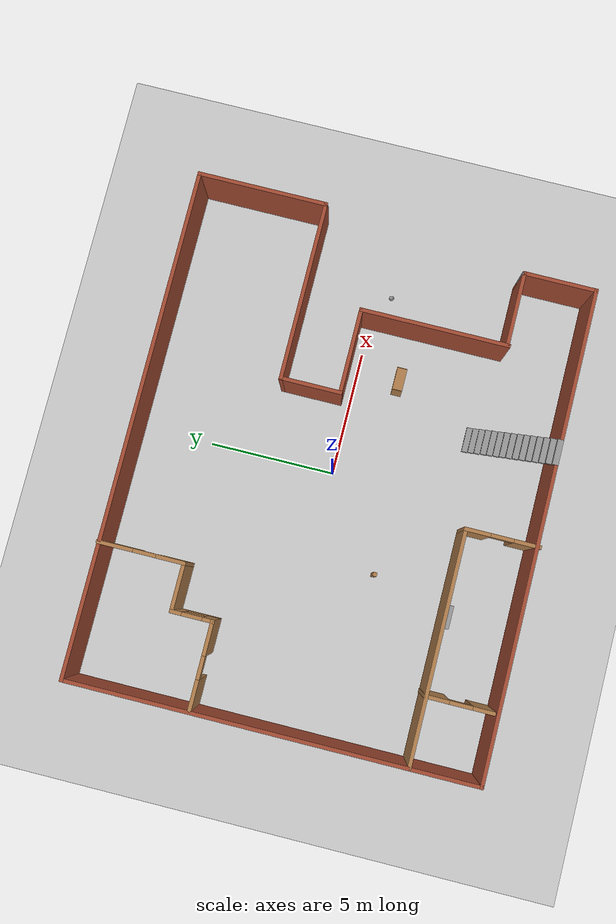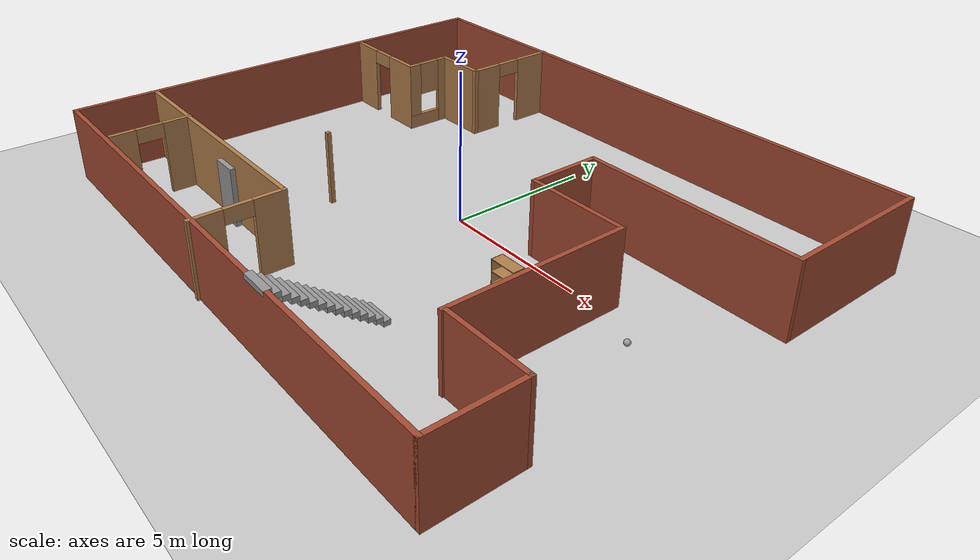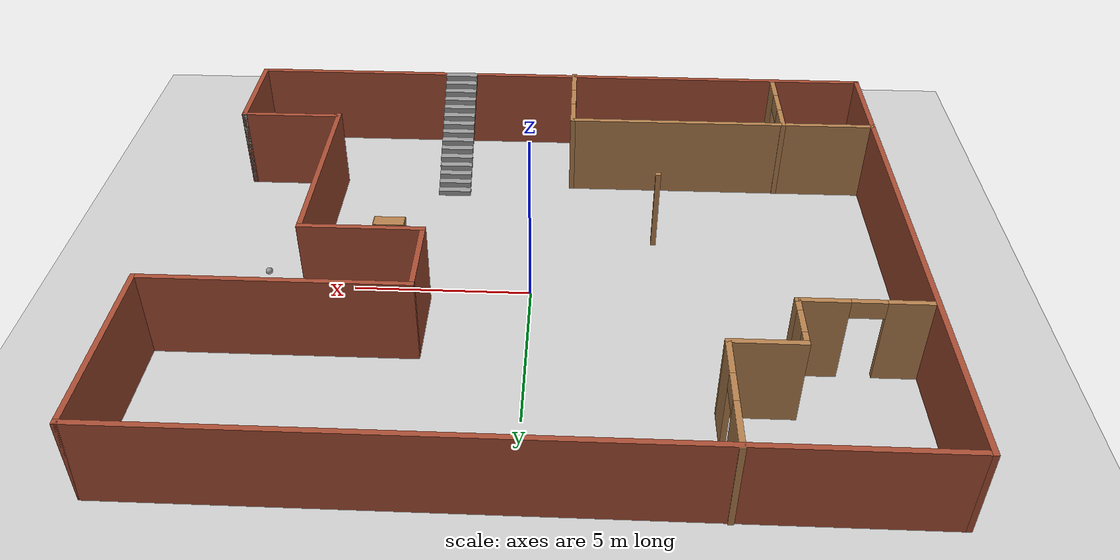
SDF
<sdf version="1.6">
 <world name="KoWorld">
  <model name="ground_plane">
   <static>1</static>
   <link name="link">
    <collision name="collision">
     <geometry><plane><normal>0 0 1</normal><size>100 100</size></plane></geometry>
     <surface>
      <contact><collide_bitmask>65535</collide_bitmask></contact>
      <friction><ode><mu>100</mu><mu2>50</mu2></ode></friction>
     </surface>
    </collision>
    <visual name="visual">
     <cast_shadows>0</cast_shadows>
     <geometry><plane><normal>0 0 1</normal><size>100 100</size></plane></geometry>
     <material>
      <script><uri>file://media/materials/scripts/gazebo.material</uri><name>Gazebo/Grey</name></script>
     </material>
    </visual>
   </link>
  </model>
  <model name="KoLabHouse">
   <pose>-0.11838 -0.20588 0 0 -0 0</pose>
   <link name="Door_3">
    <collision name="Door_3_Collision">
     <geometry><box><size>0.9 0.17 2</size></box></geometry>
     <pose>0 0 1 0 -0 0</pose>
    </collision>
    <visual name="Door_3_Visual">
     <pose>0 0 1 0 -0 0</pose>
     <geometry><box><size>0.9 0.17 2</size></box></geometry>
     <material>
      <script><uri>file://media/materials/scripts/gazebo.material</uri><name>Gazebo/Grey</name></script>
     </material>
    </visual>
    <pose>-4.31656 -5.45643 0 0 -0 0</pose>
   </link>
   <link name="Stairs_0">
    <visual name="Stairs_0_Visual_0">
     <pose>2.76269 -4.71817 0.083333 0 -0 0</pose>
     <geometry><box><size>1 0.233333 0.166667</size></box></geometry>
     <material>
      <script><uri>file://media/materials/scripts/gazebo.material</uri><name>Gazebo/Grey</name></script>
      <ambient>1 1 1 1</ambient>
     </material>
     <meta><layer>0</layer></meta>
    </visual>
    <collision name="Stairs_0_Collision_0">
     <geometry><box><size>1 0.233333 0.166667</size></box></geometry>
     <pose>2.76269 -4.71817 0.083333 0 -0 0</pose>
    </collision>
    <visual name="Stairs_0_Visual_1">
     <pose>2.76269 -4.95151 0.25 0 -0 0</pose>
     <geometry><box><size>1 0.233333 0.166667</size></box></geometry>
     <material>
      <script><uri>file://media/materials/scripts/gazebo.material</uri><name>Gazebo/Grey</name></script>
      <ambient>1 1 1 1</ambient>
     </material>
     <meta><layer>0</layer></meta>
    </visual>
    <collision name="Stairs_0_Collision_1">
     <geometry><box><size>1 0.233333 0.166667</size></box></geometry>
     <pose>2.76269 -4.95151 0.25 0 -0 0</pose>
    </collision>
    <visual name="Stairs_0_Visual_2">
     <pose>2.76269 -5.18484 0.416667 0 -0 0</pose>
     <geometry><box><size>1 0.233333 0.166667</size></box></geometry>
     <material>
      <script><uri>file://media/materials/scripts/gazebo.material</uri><name>Gazebo/Grey</name></script>
      <ambient>1 1 1 1</ambient>
     </material>
     <meta><layer>0</layer></meta>
    </visual>
    <collision name="Stairs_0_Collision_2">
     <geometry><box><size>1 0.233333 0.166667</size></box></geometry>
     <pose>2.76269 -5.18484 0.416667 0 -0 0</pose>
    </collision>
    <visual name="Stairs_0_Visual_3">
     <pose>2.76269 -5.41817 0.583333 0 -0 0</pose>
     <geometry><box><size>1 0.233333 0.166667</size></box></geometry>
     <material>
      <script><uri>file://media/materials/scripts/gazebo.material</uri><name>Gazebo/Grey</name></script>
      <ambient>1 1 1 1</ambient>
     </material>
     <meta><layer>0</layer></meta>
    </visual>
    <collision name="Stairs_0_Collision_3">
     <geometry><box><size>1 0.233333 0.166667</size></box></geometry>
     <pose>2.76269 -5.41817 0.583333 0 -0 0</pose>
    </collision>
    <visual name="Stairs_0_Visual_4">
     <pose>2.76269 -5.65151 0.75 0 -0 0</pose>
     <geometry><box><size>1 0.233333 0.166667</size></box></geometry>
     <material>
      <script><uri>file://media/materials/scripts/gazebo.material</uri><name>Gazebo/Grey</name></script>
      <ambient>1 1 1 1</ambient>
     </material>
     <meta><layer>0</layer></meta>
    </visual>
    <collision name="Stairs_0_Collision_4">
     <geometry><box><size>1 0.233333 0.166667</size></box></geometry>
     <pose>2.76269 -5.65151 0.75 0 -0 0</pose>
    </collision>
    <visual name="Stairs_0_Visual_5">
     <pose>2.76269 -5.88484 0.916667 0 -0 0</pose>
     <geometry><box><size>1 0.233333 0.166667</size></box></geometry>
     <material>
      <script><uri>file://media/materials/scripts/gazebo.material</uri><name>Gazebo/Grey</name></script>
      <ambient>1 1 1 1</ambient>
     </material>
     <meta><layer>0</layer></meta>
    </visual>
    <collision name="Stairs_0_Collision_5">
     <geometry><box><size>1 0.233333 0.166667</size></box></geometry>
     <pose>2.76269 -5.88484 0.916667 0 -0 0</pose>
    </collision>
    <visual name="Stairs_0_Visual_6">
     <pose>2.76269 -6.11817 1.08333 0 -0 0</pose>
     <geometry><box><size>1 0.233333 0.166667</size></box></geometry>
     <material>
      <script><uri>file://media/materials/scripts/gazebo.material</uri><name>Gazebo/Grey</name></script>
      <ambient>1 1 1 1</ambient>
     </material>
     <meta><layer>0</layer></meta>
    </visual>
    <collision name="Stairs_0_Collision_6">
     <geometry><box><size>1 0.233333 0.166667</size></box></geometry>
     <pose>2.76269 -6.11817 1.08333 0 -0 0</pose>
    </collision>
    <visual name="Stairs_0_Visual_7">
     <pose>2.76269 -6.35151 1.25 0 -0 0</pose>
     <geometry><box><size>1 0.233333 0.166667</size></box></geometry>
     <material>
      <script><uri>file://media/materials/scripts/gazebo.material</uri><name>Gazebo/Grey</name></script>
      <ambient>1 1 1 1</ambient>
     </material>
     <meta><layer>0</layer></meta>
    </visual>
    <collision name="Stairs_0_Collision_7">
     <geometry><box><size>1 0.233333 0.166667</size></box></geometry>
     <pose>2.76269 -6.35151 1.25 0 -0 0</pose>
    </collision>
    <visual name="Stairs_0_Visual_8">
     <pose>2.76269 -6.58484 1.41667 0 -0 0</pose>
     <geometry><box><size>1 0.233333 0.166667</size></box></geometry>
     <material>
      <script><uri>file://media/materials/scripts/gazebo.material</uri><name>Gazebo/Grey</name></script>
      <ambient>1 1 1 1</ambient>
     </material>
     <meta><layer>0</layer></meta>
    </visual>
    <collision name="Stairs_0_Collision_8">
     <geometry><box><size>1 0.233333 0.166667</size></box></geometry>
     <pose>2.76269 -6.58484 1.41667 0 -0 0</pose>
    </collision>
    <visual name="Stairs_0_Visual_9">
     <pose>2.76269 -6.81817 1.58333 0 -0 0</pose>
     <geometry><box><size>1 0.233333 0.166667</size></box></geometry>
     <material>
      <script><uri>file://media/materials/scripts/gazebo.material</uri><name>Gazebo/Grey</name></script>
      <ambient>1 1 1 1</ambient>
     </material>
     <meta><layer>0</layer></meta>
    </visual>
    <collision name="Stairs_0_Collision_9">
     <geometry><box><size>1 0.233333 0.166667</size></box></geometry>
     <pose>2.76269 -6.81817 1.58333 0 -0 0</pose>
    </collision>
    <visual name="Stairs_0_Visual_10">
     <pose>2.76269 -7.05151 1.75 0 -0 0</pose>
     <geometry><box><size>1 0.233333 0.166667</size></box></geometry>
     <material>
      <script><uri>file://media/materials/scripts/gazebo.material</uri><name>Gazebo/Grey</name></script>
      <ambient>1 1 1 1</ambient>
     </material>
     <meta><layer>0</layer></meta>
    </visual>
    <collision name="Stairs_0_Collision_10">
     <geometry><box><size>1 0.233333 0.166667</size></box></geometry>
     <pose>2.76269 -7.05151 1.75 0 -0 0</pose>
    </collision>
    <visual name="Stairs_0_Visual_11">
     <pose>2.76269 -7.28484 1.91667 0 -0 0</pose>
     <geometry><box><size>1 0.233333 0.166667</size></box></geometry>
     <material>
      <script><uri>file://media/materials/scripts/gazebo.material</uri><name>Gazebo/Grey</name></script>
      <ambient>1 1 1 1</ambient>
     </material>
     <meta><layer>0</layer></meta>
    </visual>
    <collision name="Stairs_0_Collision_11">
     <geometry><box><size>1 0.233333 0.166667</size></box></geometry>
     <pose>2.76269 -7.28484 1.91667 0 -0 0</pose>
    </collision>
    <visual name="Stairs_0_Visual_12">
     <pose>2.76269 -7.51817 2.08333 0 -0 0</pose>
     <geometry><box><size>1 0.233333 0.166667</size></box></geometry>
     <material>
      <script><uri>file://media/materials/scripts/gazebo.material</uri><name>Gazebo/Grey</name></script>
      <ambient>1 1 1 1</ambient>
     </material>
     <meta><layer>0</layer></meta>
    </visual>
    <collision name="Stairs_0_Collision_12">
     <geometry><box><size>1 0.233333 0.166667</size></box></geometry>
     <pose>2.76269 -7.51817 2.08333 0 -0 0</pose>
    </collision>
    <visual name="Stairs_0_Visual_13">
     <pose>2.76269 -7.75151 2.25 0 -0 0</pose>
     <geometry><box><size>1 0.233333 0.166667</size></box></geometry>
     <material>
      <script><uri>file://media/materials/scripts/gazebo.material</uri><name>Gazebo/Grey</name></script>
      <ambient>1 1 1 1</ambient>
     </material>
     <meta><layer>0</layer></meta>
    </visual>
    <collision name="Stairs_0_Collision_13">
     <geometry><box><size>1 0.233333 0.166667</size></box></geometry>
     <pose>2.76269 -7.75151 2.25 0 -0 0</pose>
    </collision>
    <visual name="Stairs_0_Visual_14">
     <pose>2.76269 -7.98484 2.41667 0 -0 0</pose>
     <geometry><box><size>1 0.233333 0.166667</size></box></geometry>
     <material>
      <script><uri>file://media/materials/scripts/gazebo.material</uri><name>Gazebo/Grey</name></script>
      <ambient>1 1 1 1</ambient>
     </material>
     <meta><layer>0</layer></meta>
    </visual>
    <collision name="Stairs_0_Collision_14">
     <geometry><box><size>1 0.233333 0.166667</size></box></geometry>
     <pose>2.76269 -7.98484 2.41667 0 -0 0</pose>
    </collision>
   </link>
   <link name="Wall_10">
    <collision name="Wall_10_Collision">
     <geometry><box><size>3.5 0.15 2.5</size></box></geometry>
     <pose>0 0 1.25 0 -0 0</pose>
    </collision>
    <visual name="Wall_10_Visual">
     <pose>0 0 1.25 0 -0 0</pose>
     <geometry><box><size>3.5 0.15 2.5</size></box></geometry>
     <material>
      <script><uri>file://media/materials/scripts/gazebo.material</uri><name>Gazebo/Bricks</name></script>
      <ambient>1 1 1 1</ambient>
     </material>
     <meta><layer>0</layer></meta>
    </visual>
    <pose>4.65642 0.624103 0 0 -0 0</pose>
   </link>
   <link name="Wall_11">
    <collision name="Wall_11_Collision">
     <geometry><box><size>6 0.15 2.5</size></box></geometry>
     <pose>0 0 1.25 0 -0 0</pose>
    </collision>
    <visual name="Wall_11_Visual">
     <pose>0 0 1.25 0 -0 0</pose>
     <geometry><box><size>6 0.15 2.5</size></box></geometry>
     <material>
      <script><uri>file://media/materials/scripts/gazebo.material</uri><name>Gazebo/Bricks</name></script>
      <ambient>1 1 1 1</ambient>
     </material>
     <meta><layer>0</layer></meta>
    </visual>
    <pose>6.33142 -2.3009 0 0 -0 -1.5708</pose>
   </link>
   <link name="Wall_29">
    <collision name="Wall_29_Collision">
     <geometry><box><size>16.25 0.15 2.5</size></box></geometry>
     <pose>0 0 1.25 0 -0 0</pose>
    </collision>
    <visual name="Wall_29_Visual">
     <pose>0 0 1.25 0 -0 0</pose>
     <geometry><box><size>16.25 0.15 2.5</size></box></geometry>
     <material>
      <script><uri>file://media/materials/scripts/gazebo.material</uri><name>Gazebo/Bricks</name></script>
      <ambient>1 1 1 1</ambient>
     </material>
     <meta><layer>0</layer></meta>
    </visual>
    <pose>-10.0814 0.024103 0 0 -0 -1.5708</pose>
   </link>
   <link name="Wall_30">
    <collision name="Wall_30_Collision">
     <geometry><box><size>19.5 0.15 2.5</size></box></geometry>
     <pose>0 0 1.25 0 -0 0</pose>
    </collision>
    <visual name="Wall_30_Visual">
     <pose>0 0 1.25 0 -0 0</pose>
     <geometry><box><size>19.5 0.15 2.5</size></box></geometry>
     <material>
      <script><uri>file://media/materials/scripts/gazebo.material</uri><name>Gazebo/Bricks</name></script>
      <ambient>1 1 1 1</ambient>
     </material>
     <meta><layer>0</layer></meta>
    </visual>
    <pose>-0.406424 -8.0259 0 0 -0 0</pose>
   </link>
   <link name="Wall_31">
    <collision name="Wall_31_Collision">
     <geometry><box><size>3 0.15 2.5</size></box></geometry>
     <pose>0 0 1.25 0 -0 0</pose>
    </collision>
    <visual name="Wall_31_Visual">
     <pose>0 0 1.25 0 -0 0</pose>
     <geometry><box><size>3 0.15 2.5</size></box></geometry>
     <material>
      <script><uri>file://media/materials/scripts/gazebo.material</uri><name>Gazebo/Bricks</name></script>
      <ambient>1 1 1 1</ambient>
     </material>
     <meta><layer>0</layer></meta>
    </visual>
    <pose>9.26858 -6.6009 0 0 -0 1.5708</pose>
   </link>
   <link name="Wall_32">
    <collision name="Wall_32_Collision">
     <geometry><box><size>0.15 0.15 2.5</size></box></geometry>
     <pose>0 0 1.25 0 -0 0</pose>
    </collision>
    <visual name="Wall_32_Visual">
     <pose>0 0 1.25 0 -0 0</pose>
     <geometry><box><size>0.15 0.15 2.5</size></box></geometry>
     <material>
      <script><uri>file://media/materials/scripts/gazebo.material</uri><name>Gazebo/Grey</name></script>
      <ambient>1 1 1 1</ambient>
     </material>
     <meta><layer>0</layer></meta>
    </visual>
    <pose>9.26858 -5.1759 0 0 -0 0</pose>
   </link>
   <link name="Wall_37">
    <collision name="Wall_37_Collision">
     <geometry><box><size>0.15 0.15 2.5</size></box></geometry>
     <pose>0 0 1.25 0 -0 0</pose>
    </collision>
    <visual name="Wall_37_Visual">
     <pose>0 0 1.25 0 -0 0</pose>
     <geometry><box><size>0.15 0.15 2.5</size></box></geometry>
     <material>
      <script><uri>file://media/materials/scripts/gazebo.material</uri><name>Gazebo/Wood</name></script>
      <ambient>1 1 1 1</ambient>
     </material>
     <meta><layer>0</layer></meta>
    </visual>
    <pose>-3.43142 -2.3259 0 0 -0 0</pose>
   </link>
   <link name="Wall_44">
    <collision name="Wall_44_Collision">
     <geometry><box><size>3 0.15 2.5</size></box></geometry>
     <pose>0 0 1.25 0 -0 0</pose>
    </collision>
    <visual name="Wall_44_Visual">
     <pose>0 0 1.25 0 -0 0</pose>
     <geometry><box><size>3 0.15 2.5</size></box></geometry>
     <material>
      <script><uri>file://media/materials/scripts/gazebo.material</uri><name>Gazebo/Bricks</name></script>
      <ambient>1 1 1 1</ambient>
     </material>
     <meta><layer>0</layer></meta>
    </visual>
    <pose>7.84358 -5.1759 0 0 -0 3.14159</pose>
   </link>
   <link name="Wall_49">
    <pose>-4.77775 6.43485 0 0 -0 -1.5708</pose>
    <visual name="Wall_49_Visual_0">
     <pose>-1.03616 0 1.25 0 -0 0</pose>
     <geometry><box><size>1.42767 0.15 2.5</size></box></geometry>
     <material>
      <script><uri>file://media/materials/scripts/gazebo.material</uri><name>Gazebo/Wood</name></script>
      <ambient>1 1 1 1</ambient>
     </material>
     <meta><layer>0</layer></meta>
    </visual>
    <collision name="Wall_49_Collision_0">
     <geometry><box><size>1.42767 0.15 2.5</size></box></geometry>
     <pose>-1.03616 0 1.25 0 -0 0</pose>
    </collision>
    <visual name="Wall_49_Visual_1">
     <pose>1.16384 0 1.25 0 -0 0</pose>
     <geometry><box><size>1.17233 0.15 2.5</size></box></geometry>
     <material>
      <script><uri>file://media/materials/scripts/gazebo.material</uri><name>Gazebo/Wood</name></script>
      <ambient>1 1 1 1</ambient>
     </material>
     <meta><layer>0</layer></meta>
    </visual>
    <collision name="Wall_49_Collision_1">
     <geometry><box><size>1.17233 0.15 2.5</size></box></geometry>
     <pose>1.16384 0 1.25 0 -0 0</pose>
    </collision>
    <visual name="Wall_49_Visual_2">
     <pose>0.127674 0 2.25 0 -0 0</pose>
     <geometry><box><size>0.9 0.15 0.5</size></box></geometry>
     <material>
      <script><uri>file://media/materials/scripts/gazebo.material</uri><name>Gazebo/Wood</name></script>
      <ambient>1 1 1 1</ambient>
     </material>
     <meta><layer>0</layer></meta>
    </visual>
    <collision name="Wall_49_Collision_2">
     <geometry><box><size>0.9 0.15 0.5</size></box></geometry>
     <pose>0.127674 0 2.25 0 -0 0</pose>
    </collision>
   </link>
   <link name="Wall_50">
    <collision name="Wall_50_Collision">
     <geometry><box><size>2 0.15 2.5</size></box></geometry>
     <pose>0 0 1.25 0 -0 0</pose>
    </collision>
    <visual name="Wall_50_Visual">
     <pose>0 0 1.25 0 -0 0</pose>
     <geometry><box><size>2 0.15 2.5</size></box></geometry>
     <material>
      <script><uri>file://media/materials/scripts/gazebo.material</uri><name>Gazebo/Wood</name></script>
      <ambient>1 1 1 1</ambient>
     </material>
     <meta><layer>0</layer></meta>
    </visual>
    <pose>-5.70275 4.75985 0 0 -0 3.14159</pose>
   </link>
   <link name="Wall_51">
    <pose>-6.62775 3.95985 0 0 -0 -1.5708</pose>
    <visual name="Wall_51_Visual_0">
     <pose>-0.639953 0 1.25 0 -0 0</pose>
     <geometry><box><size>0.470095 0.15 2.5</size></box></geometry>
     <material>
      <script><uri>file://media/materials/scripts/gazebo.material</uri><name>Gazebo/Wood</name></script>
      <ambient>1 1 1 1</ambient>
     </material>
     <meta><layer>0</layer></meta>
    </visual>
    <collision name="Wall_51_Collision_0">
     <geometry><box><size>0.470095 0.15 2.5</size></box></geometry>
     <pose>-0.639953 0 1.25 0 -0 0</pose>
    </collision>
    <visual name="Wall_51_Visual_1">
     <pose>0.235047 0 0.25 0 -0 0</pose>
     <geometry><box><size>1.27991 0.15 0.5</size></box></geometry>
     <material>
      <script><uri>file://media/materials/scripts/gazebo.material</uri><name>Gazebo/Wood</name></script>
      <ambient>1 1 1 1</ambient>
     </material>
     <meta><layer>0</layer></meta>
    </visual>
    <collision name="Wall_51_Collision_1">
     <geometry><box><size>1.27991 0.15 0.5</size></box></geometry>
     <pose>0.235047 0 0.25 0 -0 0</pose>
    </collision>
    <visual name="Wall_51_Visual_2">
     <pose>0.635047 0 1.5 0 -0 0</pose>
     <geometry><box><size>0.479905 0.15 2</size></box></geometry>
     <material>
      <script><uri>file://media/materials/scripts/gazebo.material</uri><name>Gazebo/Wood</name></script>
      <ambient>1 1 1 1</ambient>
     </material>
     <meta><layer>0</layer></meta>
    </visual>
    <collision name="Wall_51_Collision_2">
     <geometry><box><size>0.479905 0.15 2</size></box></geometry>
     <pose>0.635047 0 1.5 0 -0 0</pose>
    </collision>
    <visual name="Wall_51_Visual_3">
     <pose>-0.004905 0 1.9 0 -0 0</pose>
     <geometry><box><size>0.8 0.15 1.2</size></box></geometry>
     <material>
      <script><uri>file://media/materials/scripts/gazebo.material</uri><name>Gazebo/Wood</name></script>
      <ambient>1 1 1 1</ambient>
     </material>
     <meta><layer>0</layer></meta>
    </visual>
    <collision name="Wall_51_Collision_3">
     <geometry><box><size>0.8 0.15 1.2</size></box></geometry>
     <pose>-0.004905 0 1.9 0 -0 0</pose>
    </collision>
   </link>
   <link name="Wall_52">
    <pose>-8.30275 3.15985 0 0 -0 3.14159</pose>
    <visual name="Wall_52_Visual_0">
     <pose>-1.0566 0 1.25 0 -0 0</pose>
     <geometry><box><size>1.38679 0.15 2.5</size></box></geometry>
     <material>
      <script><uri>file://media/materials/scripts/gazebo.material</uri><name>Gazebo/Wood</name></script>
      <ambient>1 1 1 1</ambient>
     </material>
     <meta><layer>0</layer></meta>
    </visual>
    <collision name="Wall_52_Collision_0">
     <geometry><box><size>1.38679 0.15 2.5</size></box></geometry>
     <pose>-1.0566 0 1.25 0 -0 0</pose>
    </collision>
    <visual name="Wall_52_Visual_1">
     <pose>1.1434 0 1.25 0 -0 0</pose>
     <geometry><box><size>1.21321 0.15 2.5</size></box></geometry>
     <material>
      <script><uri>file://media/materials/scripts/gazebo.material</uri><name>Gazebo/Wood</name></script>
      <ambient>1 1 1 1</ambient>
     </material>
     <meta><layer>0</layer></meta>
    </visual>
    <collision name="Wall_52_Collision_1">
     <geometry><box><size>1.21321 0.15 2.5</size></box></geometry>
     <pose>1.1434 0 1.25 0 -0 0</pose>
    </collision>
    <visual name="Wall_52_Visual_2">
     <pose>0.086793 0 2.25 0 -0 0</pose>
     <geometry><box><size>0.9 0.15 0.5</size></box></geometry>
     <material>
      <script><uri>file://media/materials/scripts/gazebo.material</uri><name>Gazebo/Wood</name></script>
      <ambient>1 1 1 1</ambient>
     </material>
     <meta><layer>0</layer></meta>
    </visual>
    <collision name="Wall_52_Collision_2">
     <geometry><box><size>0.9 0.15 0.5</size></box></geometry>
     <pose>0.086793 0 2.25 0 -0 0</pose>
    </collision>
   </link>
   <link name="Wall_55">
    <collision name="Wall_55_Collision">
     <geometry><box><size>9.25 0.15 2.5</size></box></geometry>
     <pose>0 0 1.25 0 -0 0</pose>
    </collision>
    <visual name="Wall_55_Visual">
     <pose>0 0 1.25 0 -0 0</pose>
     <geometry><box><size>9.25 0.15 2.5</size></box></geometry>
     <material>
      <script><uri>file://media/materials/scripts/gazebo.material</uri><name>Gazebo/Wood</name></script>
      <ambient>1 1 1 1</ambient>
     </material>
     <meta><layer>0</layer></meta>
    </visual>
    <pose>-5.48373 -5.25985 0 0 -0 0</pose>
   </link>
   <link name="Wall_58">
    <pose>-0.933727 -6.68485 0 0 -0 -1.5708</pose>
    <visual name="Wall_58_Visual_0">
     <pose>-0.978932 0 1.25 0 -0 0</pose>
     <geometry><box><size>1.04214 0.15 2.5</size></box></geometry>
     <material>
      <script><uri>file://media/materials/scripts/gazebo.material</uri><name>Gazebo/Wood</name></script>
      <ambient>1 1 1 1</ambient>
     </material>
     <meta><layer>0</layer></meta>
    </visual>
    <collision name="Wall_58_Collision_0">
     <geometry><box><size>1.04214 0.15 2.5</size></box></geometry>
     <pose>-0.978932 0 1.25 0 -0 0</pose>
    </collision>
    <visual name="Wall_58_Visual_1">
     <pose>0.971068 0 1.25 0 -0 0</pose>
     <geometry><box><size>1.05787 0.15 2.5</size></box></geometry>
     <material>
      <script><uri>file://media/materials/scripts/gazebo.material</uri><name>Gazebo/Wood</name></script>
      <ambient>1 1 1 1</ambient>
     </material>
     <meta><layer>0</layer></meta>
    </visual>
    <collision name="Wall_58_Collision_1">
     <geometry><box><size>1.05787 0.15 2.5</size></box></geometry>
     <pose>0.971068 0 1.25 0 -0 0</pose>
    </collision>
    <visual name="Wall_58_Visual_2">
     <pose>-0.007865 0 2.25 0 -0 0</pose>
     <geometry><box><size>0.9 0.15 0.5</size></box></geometry>
     <material>
      <script><uri>file://media/materials/scripts/gazebo.material</uri><name>Gazebo/Wood</name></script>
      <ambient>1 1 1 1</ambient>
     </material>
     <meta><layer>0</layer></meta>
    </visual>
    <collision name="Wall_58_Collision_2">
     <geometry><box><size>0.9 0.15 0.5</size></box></geometry>
     <pose>-0.007865 0 2.25 0 -0 0</pose>
    </collision>
   </link>
   <link name="Wall_6">
    <collision name="Wall_6_Collision">
     <geometry><box><size>20.3128 0.15 2.5</size></box></geometry>
     <pose>0 0 1.25 0 -0 0</pose>
    </collision>
    <visual name="Wall_6_Visual">
     <pose>0 0 1.25 0 -0 0</pose>
     <geometry><box><size>20.3128 0.15 2.5</size></box></geometry>
     <material>
      <script><uri>file://media/materials/scripts/gazebo.material</uri><name>Gazebo/Bricks</name></script>
      <ambient>1 1 1 1</ambient>
     </material>
     <meta><layer>0</layer></meta>
    </visual>
    <pose>0 8.0741 0 0 -0 0</pose>
   </link>
   <link name="Wall_60">
    <pose>-7.36477 -6.54082 0 0 -0 -1.5708</pose>
    <visual name="Wall_60_Visual_0">
     <pose>-0.8851 0 1.25 0 -0 0</pose>
     <geometry><box><size>0.9798 0.15 2.5</size></box></geometry>
     <material>
      <script><uri>file://media/materials/scripts/gazebo.material</uri><name>Gazebo/Wood</name></script>
      <ambient>1 1 1 1</ambient>
     </material>
     <meta><layer>0</layer></meta>
    </visual>
    <collision name="Wall_60_Collision_0">
     <geometry><box><size>0.9798 0.15 2.5</size></box></geometry>
     <pose>-0.8851 0 1.25 0 -0 0</pose>
    </collision>
    <visual name="Wall_60_Visual_1">
     <pose>0.9399 0 1.25 0 -0 0</pose>
     <geometry><box><size>0.8702 0.15 2.5</size></box></geometry>
     <material>
      <script><uri>file://media/materials/scripts/gazebo.material</uri><name>Gazebo/Wood</name></script>
      <ambient>1 1 1 1</ambient>
     </material>
     <meta><layer>0</layer></meta>
    </visual>
    <collision name="Wall_60_Collision_1">
     <geometry><box><size>0.8702 0.15 2.5</size></box></geometry>
     <pose>0.9399 0 1.25 0 -0 0</pose>
    </collision>
    <visual name="Wall_60_Visual_2">
     <pose>0.0548 0 2.25 0 -0 0</pose>
     <geometry><box><size>0.9 0.15 0.5</size></box></geometry>
     <material>
      <script><uri>file://media/materials/scripts/gazebo.material</uri><name>Gazebo/Wood</name></script>
      <ambient>1 1 1 1</ambient>
     </material>
     <meta><layer>0</layer></meta>
    </visual>
    <collision name="Wall_60_Collision_2">
     <geometry><box><size>0.9 0.15 0.5</size></box></geometry>
     <pose>0.0548 0 2.25 0 -0 0</pose>
    </collision>
   </link>
   <link name="Wall_7">
    <collision name="Wall_7_Collision">
     <geometry><box><size>5.25 0.15 2.5</size></box></geometry>
     <pose>0 0 1.25 0 -0 0</pose>
    </collision>
    <visual name="Wall_7_Visual">
     <pose>0 0 1.25 0 -0 0</pose>
     <geometry><box><size>5.25 0.15 2.5</size></box></geometry>
     <material>
      <script><uri>file://media/materials/scripts/gazebo.material</uri><name>Gazebo/Bricks</name></script>
      <ambient>1 1 1 1</ambient>
     </material>
     <meta><layer>0</layer></meta>
    </visual>
    <pose>10.0814 5.5241 0 0 -0 -1.5708</pose>
   </link>
   <link name="Wall_8">
    <collision name="Wall_8_Collision">
     <geometry><box><size>7.25 0.15 2.5</size></box></geometry>
     <pose>0 0 1.25 0 -0 0</pose>
    </collision>
    <visual name="Wall_8_Visual">
     <pose>0 0 1.25 0 -0 0</pose>
     <geometry><box><size>7.25 0.15 2.5</size></box></geometry>
     <material>
      <script><uri>file://media/materials/scripts/gazebo.material</uri><name>Gazebo/Bricks</name></script>
      <ambient>1 1 1 1</ambient>
     </material>
     <meta><layer>0</layer></meta>
    </visual>
    <pose>6.53142 2.9741 0 0 -0 3.14159</pose>
   </link>
   <link name="Wall_9">
    <collision name="Wall_9_Collision">
     <geometry><box><size>2.5 0.15 2.5</size></box></geometry>
     <pose>0 0 1.25 0 -0 0</pose>
    </collision>
    <visual name="Wall_9_Visual">
     <pose>0 0 1.25 0 -0 0</pose>
     <geometry><box><size>2.5 0.15 2.5</size></box></geometry>
     <material>
      <script><uri>file://media/materials/scripts/gazebo.material</uri><name>Gazebo/Bricks</name></script>
      <ambient>1 1 1 1</ambient>
     </material>
     <meta><layer>0</layer></meta>
    </visual>
    <pose>2.98142 1.7991 0 0 -0 -1.5708</pose>
   </link>
   <static>1</static>
  </model>
  <model name="bookshelf_0">
   <static>1</static>
   <link name="link">
    <inertial><mass>1</mass></inertial>
    <collision name="back">
     <pose>0 0.005 0.6 0 -0 0</pose>
     <geometry><box><size>0.9 0.01 1.2</size></box></geometry>
    </collision>
    <visual name="visual1">
     <pose>0 0.005 0.6 0 -0 0</pose>
     <geometry><box><size>0.9 0.01 1.2</size></box></geometry>
     <material>
      <script><uri>file://media/materials/scripts/gazebo.material</uri><name>Gazebo/Wood</name></script>
     </material>
    </visual>
    <collision name="left_side">
     <pose>0.45 -0.195 0.6 0 -0 0</pose>
     <geometry><box><size>0.02 0.4 1.2</size></box></geometry>
    </collision>
    <visual name="visual2">
     <pose>0.45 -0.195 0.6 0 -0 0</pose>
     <geometry><box><size>0.02 0.4 1.2</size></box></geometry>
     <material>
      <script><uri>file://media/materials/scripts/gazebo.material</uri><name>Gazebo/Wood</name></script>
     </material>
    </visual>
    <collision name="right_side">
     <pose>-0.45 -0.195 0.6 0 -0 0</pose>
     <geometry><box><size>0.02 0.4 1.2</size></box></geometry>
    </collision>
    <visual name="visual3">
     <pose>-0.45 -0.195 0.6 0 -0 0</pose>
     <geometry><box><size>0.02 0.4 1.2</size></box></geometry>
     <material>
      <script><uri>file://media/materials/scripts/gazebo.material</uri><name>Gazebo/Wood</name></script>
     </material>
    </visual>
    <collision name="bottom">
     <pose>0 -0.195 0.03 0 -0 0</pose>
     <geometry><box><size>0.88 0.4 0.06</size></box></geometry>
    </collision>
    <visual name="visual4">
     <pose>0 -0.195 0.03 0 -0 0</pose>
     <geometry><box><size>0.88 0.4 0.06</size></box></geometry>
     <material>
      <script><uri>file://media/materials/scripts/gazebo.material</uri><name>Gazebo/Wood</name></script>
     </material>
    </visual>
    <collision name="top">
     <pose>0 -0.195 1.19 0 -0 0</pose>
     <geometry><box><size>0.88 0.4 0.02</size></box></geometry>
    </collision>
    <visual name="visual5">
     <pose>0 -0.195 1.19 0 -0 0</pose>
     <geometry><box><size>0.88 0.4 0.02</size></box></geometry>
     <material>
      <script><uri>file://media/materials/scripts/gazebo.material</uri><name>Gazebo/Wood</name></script>
     </material>
    </visual>
    <collision name="low_shelf">
     <pose>0 -0.195 0.43 0 -0 0</pose>
     <geometry><box><size>0.88 0.4 0.02</size></box></geometry>
    </collision>
    <visual name="visual6">
     <pose>0 -0.195 0.43 0 -0 0</pose>
     <geometry><box><size>0.88 0.4 0.02</size></box></geometry>
     <material>
      <script><uri>file://media/materials/scripts/gazebo.material</uri><name>Gazebo/Wood</name></script>
     </material>
    </visual>
    <collision name="high_shelf">
     <pose>0 -0.195 0.8 0 -0 0</pose>
     <geometry><box><size>0.88 0.4 0.02</size></box></geometry>
    </collision>
    <visual name="visual7">
     <pose>0 -0.195 0.8 0 -0 0</pose>
     <geometry><box><size>0.88 0.4 0.02</size></box></geometry>
     <material>
      <script><uri>file://media/materials/scripts/gazebo.material</uri><name>Gazebo/Wood</name></script>
     </material>
    </visual>
   </link>
   <pose>4.19066 -1.49392 0 0 -0 0</pose>
  </model>
  <model name="my_ball">
   <link name="link_2">
    <inertial>
     <mass>1</mass>
     <inertia><ixx>0.1</ixx><ixy>0</ixy><ixz>0</ixz><iyy>0.1</iyy><iyz>0</iyz><izz>0.1</izz></inertia>
    </inertial>
    <visual name="visual">
     <geometry><sphere><radius>0.1</radius></sphere></geometry>
     <material>
      <lighting>1</lighting>
      <script><uri>file://media/materials/scripts/gazebo.material</uri><name>Gazebo/Grey</name></script>
      <shader type="pixel"><normal_map>__default__</normal_map></shader>
      <ambient>1 1 1 1</ambient>
      <diffuse>1 1 1 1</diffuse>
      <specular>1 1 1 1</specular>
      <emissive>1 1 1 1</emissive>
     </material>
    </visual>
    <collision name="collision">
     <geometry><sphere><radius>0.1</radius></sphere></geometry>
     <surface>
      <friction>
       <ode><mu>1</mu><mu2>1</mu2><fdir1>0 0 0</fdir1><slip1>0</slip1><slip2>0</slip2></ode>
       <torsional>
        <coefficient>1</coefficient>
        <patch_radius>0</patch_radius>
        <surface_radius>0</surface_radius>
        <use_patch_radius>1</use_patch_radius>
        <ode><slip>0</slip></ode>
       </torsional>
      </friction>
      <bounce><restitution_coefficient>0</restitution_coefficient><threshold>1e+06</threshold></bounce>
      <contact>
       <collide_without_contact>0</collide_without_contact>
       <collide_without_contact_bitmask>1</collide_without_contact_bitmask>
       <collide_bitmask>1</collide_bitmask>
       <ode>
        <soft_cfm>0</soft_cfm>
        <soft_erp>0.2</soft_erp>
        <kp>1e+13</kp>
        <kd>1</kd>
        <max_vel>0.01</max_vel>
        <min_depth>0</min_depth>
       </ode>
       <bullet>
        <split_impulse>1</split_impulse>
        <split_impulse_penetration_threshold>-0.01</split_impulse_penetration_threshold>
        <soft_cfm>0</soft_cfm>
        <soft_erp>0.2</soft_erp>
        <kp>1e+13</kp>
        <kd>1</kd>
       </bullet>
      </contact>
     </surface>
    </collision>
   </link>
   <static>0</static>
   <pose>7.59199 -0.580924 0.1 0 -0 0</pose>
  </model>
 </world>
</sdf>
